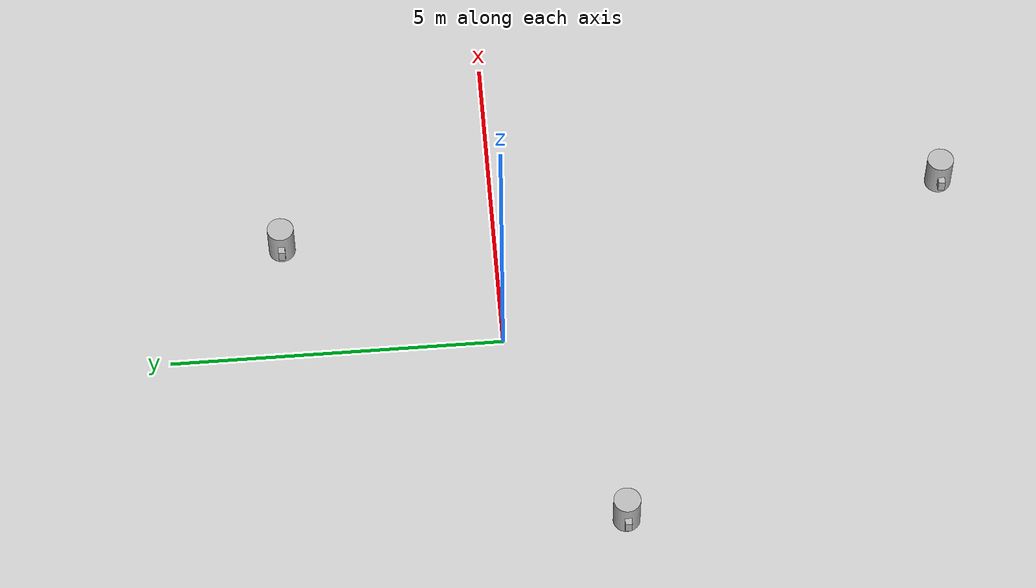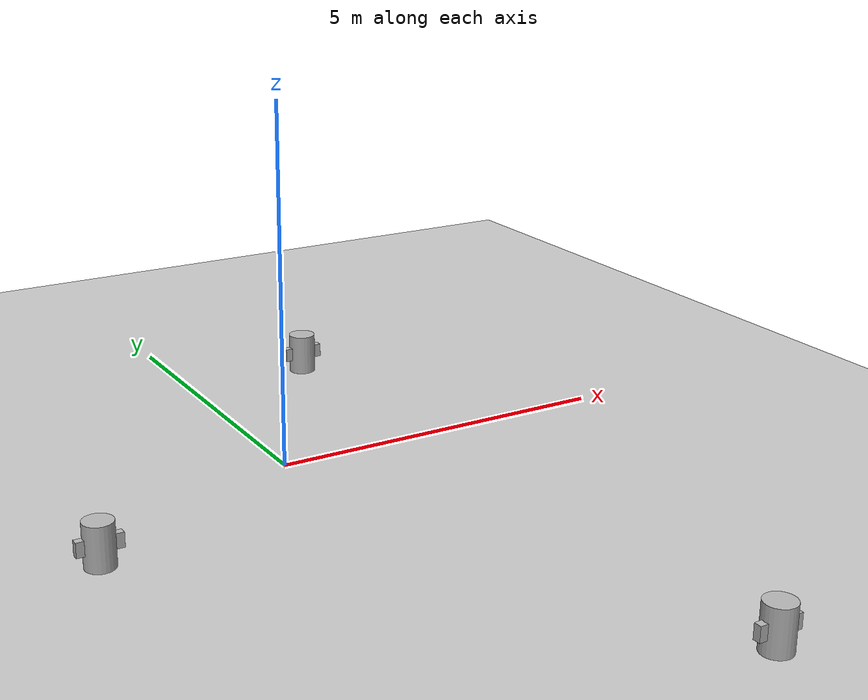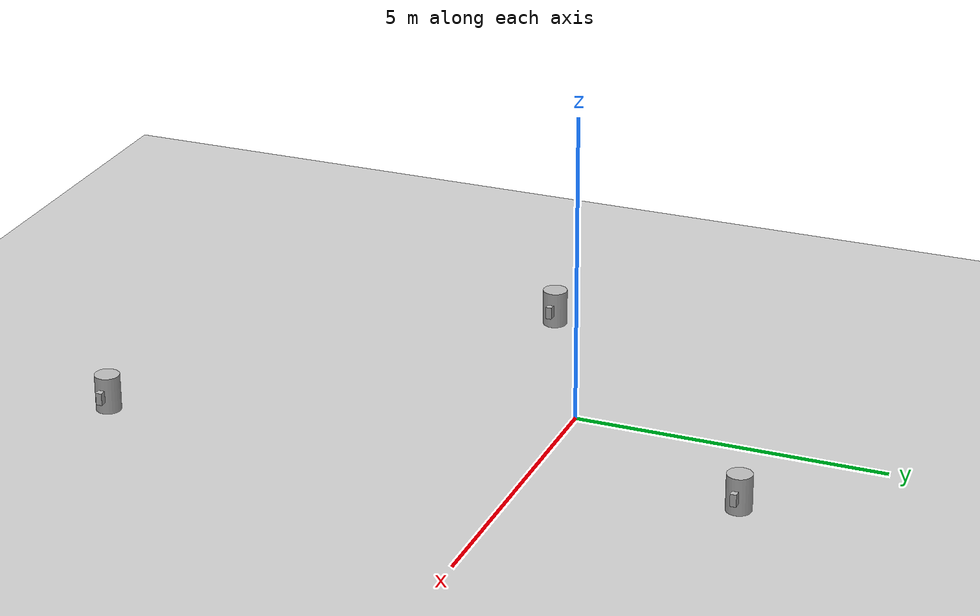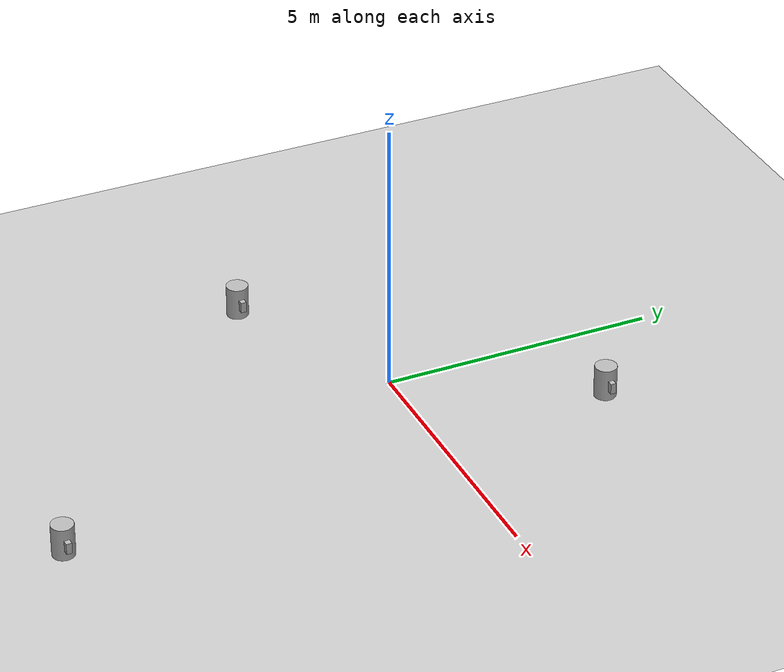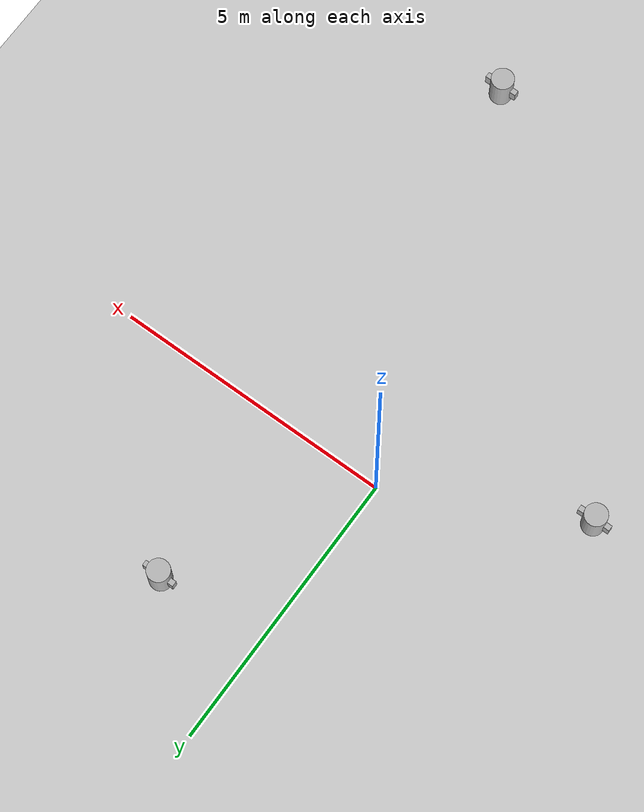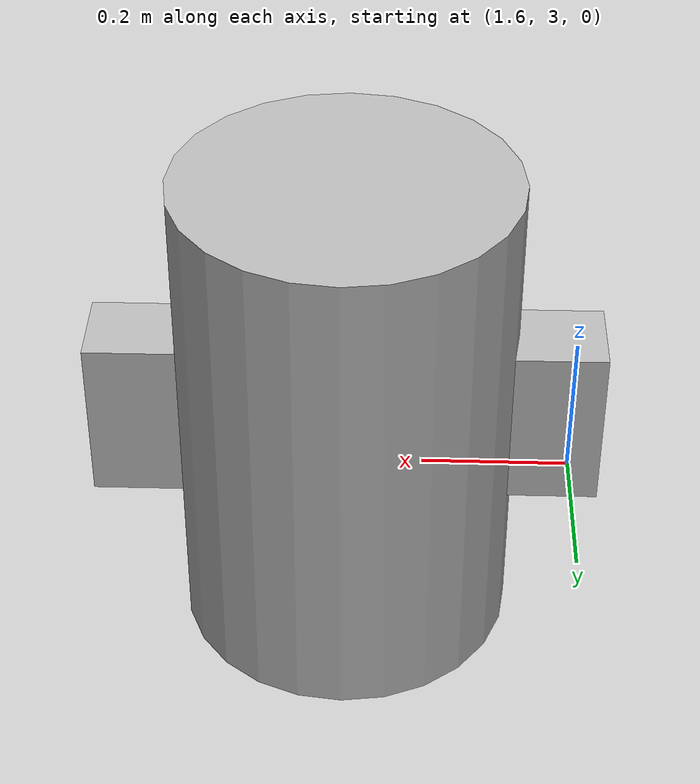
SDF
<sdf version="1.6">
 <world name="default">
  <light name="sun" type="directional">
   <pose>0 0 10 0 -0 0</pose>
   <diffuse>0.8 0.8 0.8 1</diffuse>
   <specular>0.2 0.2 0.2 1</specular>
   <attenuation>
    <range>1000</range>
    <constant>0.9</constant>
    <linear>0.01</linear>
    <quadratic>0.001</quadratic>
   </attenuation>
   <direction>-0.5 0.1 -0.9</direction>
  </light>
  <model name="ground_plane">
   <static>1</static>
   <link name="link">
    <collision name="collision">
     <geometry><plane><normal>0 0 1</normal><size>100 100</size></plane></geometry>
     <surface>
      <contact><collide_bitmask>65535</collide_bitmask></contact>
      <friction><ode><mu>100</mu><mu2>50</mu2></ode></friction>
     </surface>
    </collision>
    <visual name="visual">
     <cast_shadows>0</cast_shadows>
     <geometry><plane><normal>0 0 1</normal><size>100 100</size></plane></geometry>
     <material>
      <script><uri>file://media/materials/scripts/gazebo.material</uri><name>Gazebo/Grey</name></script>
     </material>
    </visual>
   </link>
  </model>
  <gravity>0 0 -9.8</gravity>
  <magnetic_field>6e-06 2.3e-05 -4.2e-05</magnetic_field>
  <atmosphere type="adiabatic"/>
  <physics name="default_physics" default="0" type="ode">
   <max_step_size>0.001</max_step_size>
   <real_time_factor>1</real_time_factor>
   <real_time_update_rate>1000</real_time_update_rate>
  </physics>
  <scene><ambient>0.4 0.4 0.4 1</ambient><background>0.7 0.7 0.7 1</background><shadows>1</shadows></scene>
  <audio><device>default</device></audio>
  <spherical_coordinates>
   <surface_model>EARTH_WGS84</surface_model>
   <latitude_deg>0</latitude_deg>
   <longitude_deg>0</longitude_deg>
   <elevation>0</elevation>
   <heading_deg>0</heading_deg>
  </spherical_coordinates>
  <model name="robot">
   <link name="base_link">
    <inertial>
     <mass>0.5</mass>
     <inertia><ixx>1</ixx><ixy>0</ixy><ixz>0</ixz><iyy>1</iyy><iyz>0</iyz><izz>1</izz></inertia>
    </inertial>
    <collision name="base_link_collision">
     <geometry><cylinder><length>0.6</length><radius>0.2</radius></cylinder></geometry>
    </collision>
    <visual name="base_link_visual">
     <geometry><cylinder><length>0.6</length><radius>0.2</radius></cylinder></geometry>
    </visual>
   </link>
   <link name="right_leg">
    <inertial>
     <mass>0.2</mass>
     <inertia><ixx>1</ixx><ixy>0</ixy><ixz>0</ixz><iyy>1</iyy><iyz>0</iyz><izz>1</izz></inertia>
    </inertial>
    <collision name="right_leg_collision"><geometry><box><size>0.6 0.1 0.2</size></box></geometry></collision>
    <visual name="right_leg_visual"><geometry><box><size>0.6 0.1 0.2</size></box></geometry></visual>
   </link>
   <joint name="base_to_right_leg" type="revolute">
    <child>right_leg</child>
    <parent>base_link</parent>
    <axis>
     <xyz>1 0 0</xyz>
     <limit><lower>-1e+16</lower><upper>1e+16</upper></limit>
     <dynamics><spring_reference>0</spring_reference><spring_stiffness>0</spring_stiffness></dynamics>
     <use_parent_model_frame>1</use_parent_model_frame>
    </axis>
   </joint>
   <pose>-3.17562 -1.5575 0.3 0 -0 2e-06</pose>
  </model>
  <model name="robot_0">
   <link name="base_link">
    <inertial>
     <mass>0.5</mass>
     <inertia><ixx>1</ixx><ixy>0</ixy><ixz>0</ixz><iyy>1</iyy><iyz>0</iyz><izz>1</izz></inertia>
    </inertial>
    <collision name="base_link_collision">
     <geometry><cylinder><length>0.6</length><radius>0.2</radius></cylinder></geometry>
    </collision>
    <visual name="base_link_visual">
     <geometry><cylinder><length>0.6</length><radius>0.2</radius></cylinder></geometry>
    </visual>
   </link>
   <link name="right_leg">
    <inertial>
     <mass>0.2</mass>
     <inertia><ixx>1</ixx><ixy>0</ixy><ixz>0</ixz><iyy>1</iyy><iyz>0</iyz><izz>1</izz></inertia>
    </inertial>
    <collision name="right_leg_collision"><geometry><box><size>0.6 0.1 0.2</size></box></geometry></collision>
    <visual name="right_leg_visual"><geometry><box><size>0.6 0.1 0.2</size></box></geometry></visual>
   </link>
   <joint name="base_to_right_leg" type="revolute">
    <child>right_leg</child>
    <parent>base_link</parent>
    <axis>
     <xyz>1 0 0</xyz>
     <limit><lower>-1e+16</lower><upper>1e+16</upper></limit>
     <dynamics><spring_reference>0</spring_reference><spring_stiffness>0</spring_stiffness></dynamics>
     <use_parent_model_frame>1</use_parent_model_frame>
    </axis>
   </joint>
   <pose>1.89708 3.25116 0.299995 0 -0 3e-06</pose>
  </model>
  <model name="robot_1">
   <link name="base_link">
    <inertial>
     <mass>0.5</mass>
     <inertia><ixx>1</ixx><ixy>0</ixy><ixz>0</ixz><iyy>1</iyy><iyz>0</iyz><izz>1</izz></inertia>
    </inertial>
    <collision name="base_link_collision">
     <geometry><cylinder><length>0.6</length><radius>0.2</radius></cylinder></geometry>
    </collision>
    <visual name="base_link_visual">
     <geometry><cylinder><length>0.6</length><radius>0.2</radius></cylinder></geometry>
    </visual>
   </link>
   <link name="right_leg">
    <inertial>
     <mass>0.2</mass>
     <inertia><ixx>1</ixx><ixy>0</ixy><ixz>0</ixz><iyy>1</iyy><iyz>0</iyz><izz>1</izz></inertia>
    </inertial>
    <collision name="right_leg_collision"><geometry><box><size>0.6 0.1 0.2</size></box></geometry></collision>
    <visual name="right_leg_visual"><geometry><box><size>0.6 0.1 0.2</size></box></geometry></visual>
   </link>
   <joint name="base_to_right_leg" type="revolute">
    <child>right_leg</child>
    <parent>base_link</parent>
    <axis>
     <xyz>1 0 0</xyz>
     <limit><lower>-1e+16</lower><upper>1e+16</upper></limit>
     <dynamics><spring_reference>0</spring_reference><spring_stiffness>0</spring_stiffness></dynamics>
     <use_parent_model_frame>1</use_parent_model_frame>
    </axis>
   </joint>
   <pose>2.36225 -6.91047 0.3 0 -0 6e-06</pose>
  </model>
 </world>
</sdf>
